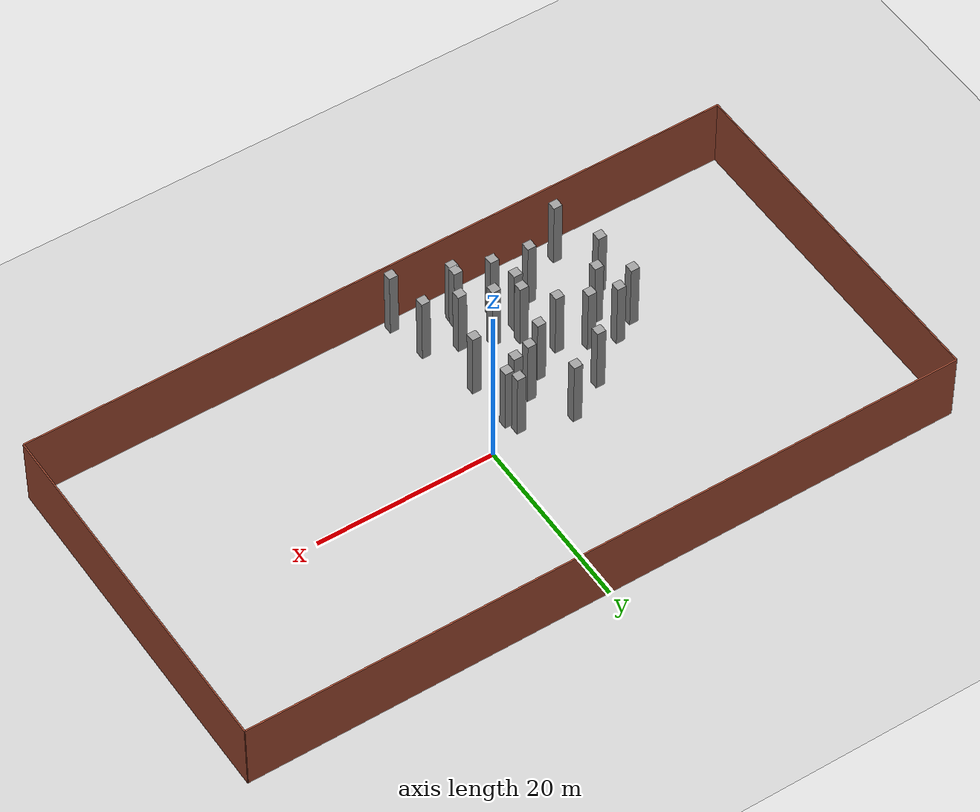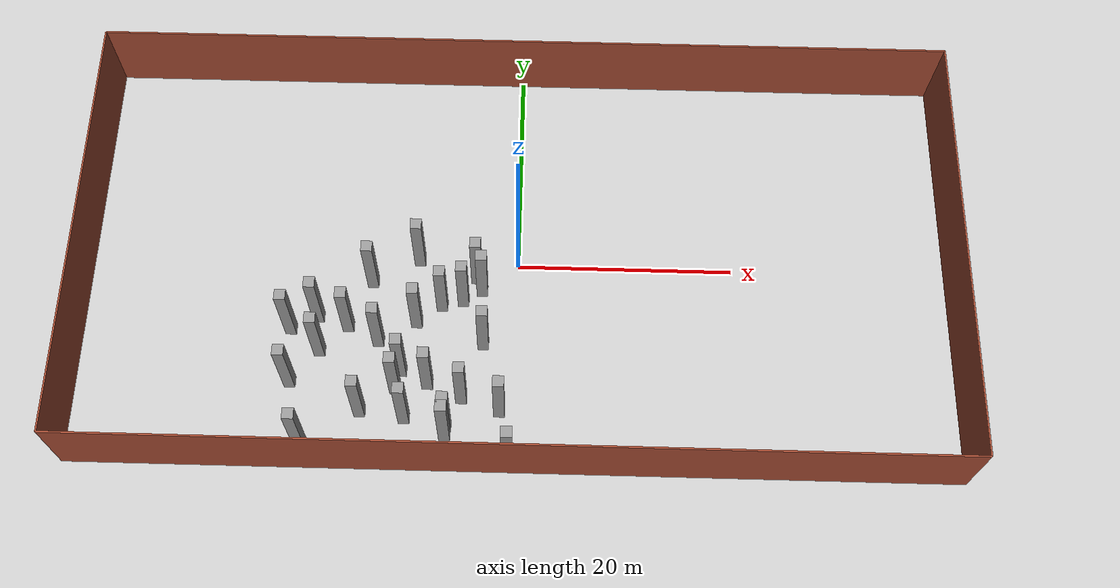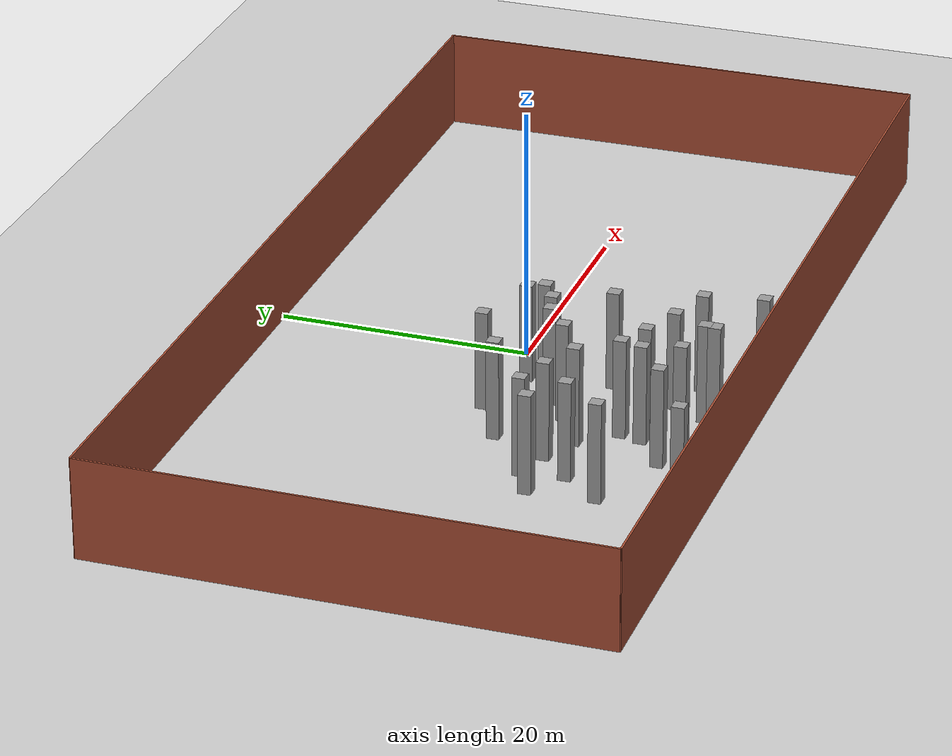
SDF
<sdf version="1.7">
 <world name="default">
  <model name="ground_plane">
   <static>1</static>
   <link name="link">
    <collision name="collision">
     <geometry><plane><normal>0 0 1</normal><size>100 100</size></plane></geometry>
     <surface>
      <contact><collide_bitmask>65535</collide_bitmask></contact>
      <friction><ode><mu>100</mu><mu2>50</mu2></ode></friction>
     </surface>
    </collision>
    <visual name="visual">
     <cast_shadows>0</cast_shadows>
     <geometry><plane><normal>0 0 1</normal><size>100 100</size></plane></geometry>
     <material>
      <script><uri>file://media/materials/scripts/gazebo.material</uri><name>Gazebo/Grey</name></script>
     </material>
    </visual>
   </link>
  </model>
  <model name="sim_room_rect">
   <link name="Wall_14">
    <collision name="Wall_14_Collision">
     <geometry><box><size>40 0.15 8</size></box></geometry>
     <pose>0 0 4 0 -0 0</pose>
    </collision>
    <visual name="Wall_14_Visual">
     <pose>0 0 4 0 -0 0</pose>
     <geometry><box><size>40 0.15 8</size></box></geometry>
     <material>
      <script><uri>file://media/materials/scripts/gazebo.material</uri><name>Gazebo/Bricks</name></script>
      <ambient>1 1 1 1</ambient>
     </material>
     <meta><layer>0</layer></meta>
    </visual>
    <pose>40 -0 0 0 -0 -1.5708</pose>
   </link>
   <link name="Wall_15">
    <collision name="Wall_15_Collision">
     <geometry><box><size>80 0.15 8</size></box></geometry>
     <pose>0 0 4 0 -0 0</pose>
    </collision>
    <visual name="Wall_15_Visual">
     <pose>0 0 4 0 -0 0</pose>
     <geometry><box><size>80 0.15 8</size></box></geometry>
     <material>
      <script><uri>file://media/materials/scripts/gazebo.material</uri><name>Gazebo/Bricks</name></script>
      <ambient>1 1 1 1</ambient>
     </material>
     <meta><layer>0</layer></meta>
    </visual>
    <pose>0 -20 0 0 -0 3.14159</pose>
   </link>
   <link name="Wall_16">
    <collision name="Wall_16_Collision">
     <geometry><box><size>40 0.15 8</size></box></geometry>
     <pose>0 0 4 0 -0 0</pose>
    </collision>
    <visual name="Wall_16_Visual">
     <pose>0 0 4 0 -0 0</pose>
     <geometry><box><size>40 0.15 8</size></box></geometry>
     <material>
      <script><uri>file://media/materials/scripts/gazebo.material</uri><name>Gazebo/Bricks</name></script>
      <ambient>1 1 1 1</ambient>
     </material>
     <meta><layer>0</layer></meta>
    </visual>
    <pose>-40 -0 0 0 -0 1.5708</pose>
   </link>
   <link name="Wall_19">
    <collision name="Wall_19_Collision">
     <geometry><box><size>80 0.15 8</size></box></geometry>
     <pose>0 0 4 0 -0 0</pose>
    </collision>
    <visual name="Wall_19_Visual">
     <pose>0 0 4 0 -0 0</pose>
     <geometry><box><size>80 0.15 8</size></box></geometry>
     <material>
      <script><uri>file://media/materials/scripts/gazebo.material</uri><name>Gazebo/Bricks</name></script>
      <ambient>1 1 1 1</ambient>
     </material>
     <meta><layer>0</layer></meta>
    </visual>
    <pose>0 20 0 0 -0 0</pose>
   </link>
   <static>1</static>
  </model>
  <model name="unit_box_static2">
   <link name="link">
    <inertial>
     <mass>1</mass>
     <inertia>
      <ixx>0.166667</ixx>
      <ixy>0</ixy>
      <ixz>0</ixz>
      <iyy>0.166667</iyy>
      <iyz>0</iyz>
      <izz>0.166667</izz>
     </inertia>
    </inertial>
    <visual name="visual">
     <geometry><box><size>1 1 8</size></box></geometry>
     <material>
      <script><name>Gazebo/Grey</name><uri>file://media/materials/scripts/gazebo.material</uri></script>
      <shader type="pixel"/>
     </material>
    </visual>
    <collision name="collision">
     <geometry><box><size>1 1 8</size></box></geometry>
     <surface>
      <friction>
       <ode><mu>1</mu><mu2>1</mu2><fdir1>0 0 0</fdir1><slip1>0</slip1><slip2>0</slip2></ode>
       <torsional>
        <coefficient>1</coefficient>
        <patch_radius>0</patch_radius>
        <surface_radius>0</surface_radius>
        <use_patch_radius>1</use_patch_radius>
        <ode><slip>0</slip></ode>
       </torsional>
      </friction>
      <bounce><restitution_coefficient>0</restitution_coefficient><threshold>1e+06</threshold></bounce>
      <contact>
       <collide_without_contact>0</collide_without_contact>
       <collide_without_contact_bitmask>1</collide_without_contact_bitmask>
       <collide_bitmask>1</collide_bitmask>
       <ode>
        <soft_cfm>0</soft_cfm>
        <soft_erp>0.2</soft_erp>
        <kp>1e+13</kp>
        <kd>1</kd>
        <max_vel>0.01</max_vel>
        <min_depth>0</min_depth>
       </ode>
       <bullet>
        <split_impulse>1</split_impulse>
        <split_impulse_penetration_threshold>-0.01</split_impulse_penetration_threshold>
        <soft_cfm>0</soft_cfm>
        <soft_erp>0.2</soft_erp>
        <kp>1e+13</kp>
        <kd>1</kd>
       </bullet>
      </contact>
     </surface>
    </collision>
   </link>
   <static>1</static>
   <pose>-9.19564 -5.97287 4 0 -0 0</pose>
  </model>
  <model name="unit_box_static8">
   <link name="link">
    <inertial>
     <mass>1</mass>
     <inertia>
      <ixx>0.166667</ixx>
      <ixy>0</ixy>
      <ixz>0</ixz>
      <iyy>0.166667</iyy>
      <iyz>0</iyz>
      <izz>0.166667</izz>
     </inertia>
    </inertial>
    <visual name="visual">
     <geometry><box><size>1 1 8</size></box></geometry>
     <material>
      <script><name>Gazebo/Grey</name><uri>file://media/materials/scripts/gazebo.material</uri></script>
      <shader type="pixel"/>
     </material>
    </visual>
    <collision name="collision">
     <geometry><box><size>1 1 8</size></box></geometry>
     <surface>
      <friction>
       <ode><mu>1</mu><mu2>1</mu2><fdir1>0 0 0</fdir1><slip1>0</slip1><slip2>0</slip2></ode>
       <torsional>
        <coefficient>1</coefficient>
        <patch_radius>0</patch_radius>
        <surface_radius>0</surface_radius>
        <use_patch_radius>1</use_patch_radius>
        <ode><slip>0</slip></ode>
       </torsional>
      </friction>
      <bounce><restitution_coefficient>0</restitution_coefficient><threshold>1e+06</threshold></bounce>
      <contact>
       <collide_without_contact>0</collide_without_contact>
       <collide_without_contact_bitmask>1</collide_without_contact_bitmask>
       <collide_bitmask>1</collide_bitmask>
       <ode>
        <soft_cfm>0</soft_cfm>
        <soft_erp>0.2</soft_erp>
        <kp>1e+13</kp>
        <kd>1</kd>
        <max_vel>0.01</max_vel>
        <min_depth>0</min_depth>
       </ode>
       <bullet>
        <split_impulse>1</split_impulse>
        <split_impulse_penetration_threshold>-0.01</split_impulse_penetration_threshold>
        <soft_cfm>0</soft_cfm>
        <soft_erp>0.2</soft_erp>
        <kp>1e+13</kp>
        <kd>1</kd>
       </bullet>
      </contact>
     </surface>
    </collision>
   </link>
   <static>1</static>
   <pose>-6.16875 -16.7566 4 0 -0 0</pose>
  </model>
  <model name="unit_box_static10">
   <link name="link">
    <inertial>
     <mass>1</mass>
     <inertia>
      <ixx>0.166667</ixx>
      <ixy>0</ixy>
      <ixz>0</ixz>
      <iyy>0.166667</iyy>
      <iyz>0</iyz>
      <izz>0.166667</izz>
     </inertia>
    </inertial>
    <visual name="visual">
     <geometry><box><size>1 1 8</size></box></geometry>
     <material>
      <script><name>Gazebo/Grey</name><uri>file://media/materials/scripts/gazebo.material</uri></script>
      <shader type="pixel"/>
     </material>
    </visual>
    <collision name="collision">
     <geometry><box><size>1 1 8</size></box></geometry>
     <surface>
      <friction>
       <ode><mu>1</mu><mu2>1</mu2><fdir1>0 0 0</fdir1><slip1>0</slip1><slip2>0</slip2></ode>
       <torsional>
        <coefficient>1</coefficient>
        <patch_radius>0</patch_radius>
        <surface_radius>0</surface_radius>
        <use_patch_radius>1</use_patch_radius>
        <ode><slip>0</slip></ode>
       </torsional>
      </friction>
      <bounce><restitution_coefficient>0</restitution_coefficient><threshold>1e+06</threshold></bounce>
      <contact>
       <collide_without_contact>0</collide_without_contact>
       <collide_without_contact_bitmask>1</collide_without_contact_bitmask>
       <collide_bitmask>1</collide_bitmask>
       <ode>
        <soft_cfm>0</soft_cfm>
        <soft_erp>0.2</soft_erp>
        <kp>1e+13</kp>
        <kd>1</kd>
        <max_vel>0.01</max_vel>
        <min_depth>0</min_depth>
       </ode>
       <bullet>
        <split_impulse>1</split_impulse>
        <split_impulse_penetration_threshold>-0.01</split_impulse_penetration_threshold>
        <soft_cfm>0</soft_cfm>
        <soft_erp>0.2</soft_erp>
        <kp>1e+13</kp>
        <kd>1</kd>
       </bullet>
      </contact>
     </surface>
    </collision>
   </link>
   <static>1</static>
   <pose>-18.3056 -5.62898 4 0 -0 0</pose>
  </model>
  <model name="unit_box_static21">
   <link name="link">
    <inertial>
     <mass>1</mass>
     <inertia>
      <ixx>0.166667</ixx>
      <ixy>0</ixy>
      <ixz>0</ixz>
      <iyy>0.166667</iyy>
      <iyz>0</iyz>
      <izz>0.166667</izz>
     </inertia>
    </inertial>
    <visual name="visual">
     <geometry><box><size>1 1 8</size></box></geometry>
     <material>
      <script><name>Gazebo/Grey</name><uri>file://media/materials/scripts/gazebo.material</uri></script>
      <shader type="pixel"/>
     </material>
    </visual>
    <collision name="collision">
     <geometry><box><size>1 1 8</size></box></geometry>
     <surface>
      <friction>
       <ode><mu>1</mu><mu2>1</mu2><fdir1>0 0 0</fdir1><slip1>0</slip1><slip2>0</slip2></ode>
       <torsional>
        <coefficient>1</coefficient>
        <patch_radius>0</patch_radius>
        <surface_radius>0</surface_radius>
        <use_patch_radius>1</use_patch_radius>
        <ode><slip>0</slip></ode>
       </torsional>
      </friction>
      <bounce><restitution_coefficient>0</restitution_coefficient><threshold>1e+06</threshold></bounce>
      <contact>
       <collide_without_contact>0</collide_without_contact>
       <collide_without_contact_bitmask>1</collide_without_contact_bitmask>
       <collide_bitmask>1</collide_bitmask>
       <ode>
        <soft_cfm>0</soft_cfm>
        <soft_erp>0.2</soft_erp>
        <kp>1e+13</kp>
        <kd>1</kd>
        <max_vel>0.01</max_vel>
        <min_depth>0</min_depth>
       </ode>
       <bullet>
        <split_impulse>1</split_impulse>
        <split_impulse_penetration_threshold>-0.01</split_impulse_penetration_threshold>
        <soft_cfm>0</soft_cfm>
        <soft_erp>0.2</soft_erp>
        <kp>1e+13</kp>
        <kd>1</kd>
       </bullet>
      </contact>
     </surface>
    </collision>
   </link>
   <static>1</static>
   <pose>-9.87841 -15.2648 4 0 -0 0</pose>
  </model>
  <model name="unit_box_static29">
   <link name="link">
    <inertial>
     <mass>1</mass>
     <inertia>
      <ixx>0.166667</ixx>
      <ixy>0</ixy>
      <ixz>0</ixz>
      <iyy>0.166667</iyy>
      <iyz>0</iyz>
      <izz>0.166667</izz>
     </inertia>
    </inertial>
    <visual name="visual">
     <geometry><box><size>1 1 8</size></box></geometry>
     <material>
      <script><name>Gazebo/Grey</name><uri>file://media/materials/scripts/gazebo.material</uri></script>
      <shader type="pixel"/>
     </material>
    </visual>
    <collision name="collision">
     <geometry><box><size>1 1 8</size></box></geometry>
     <surface>
      <friction>
       <ode><mu>1</mu><mu2>1</mu2><fdir1>0 0 0</fdir1><slip1>0</slip1><slip2>0</slip2></ode>
       <torsional>
        <coefficient>1</coefficient>
        <patch_radius>0</patch_radius>
        <surface_radius>0</surface_radius>
        <use_patch_radius>1</use_patch_radius>
        <ode><slip>0</slip></ode>
       </torsional>
      </friction>
      <bounce><restitution_coefficient>0</restitution_coefficient><threshold>1e+06</threshold></bounce>
      <contact>
       <collide_without_contact>0</collide_without_contact>
       <collide_without_contact_bitmask>1</collide_without_contact_bitmask>
       <collide_bitmask>1</collide_bitmask>
       <ode>
        <soft_cfm>0</soft_cfm>
        <soft_erp>0.2</soft_erp>
        <kp>1e+13</kp>
        <kd>1</kd>
        <max_vel>0.01</max_vel>
        <min_depth>0</min_depth>
       </ode>
       <bullet>
        <split_impulse>1</split_impulse>
        <split_impulse_penetration_threshold>-0.01</split_impulse_penetration_threshold>
        <soft_cfm>0</soft_cfm>
        <soft_erp>0.2</soft_erp>
        <kp>1e+13</kp>
        <kd>1</kd>
       </bullet>
      </contact>
     </surface>
    </collision>
   </link>
   <static>1</static>
   <pose>-6.92223 -4.2408 4 0 -0 0</pose>
  </model>
  <model name="unit_box_static36">
   <link name="link">
    <inertial>
     <mass>1</mass>
     <inertia>
      <ixx>0.166667</ixx>
      <ixy>0</ixy>
      <ixz>0</ixz>
      <iyy>0.166667</iyy>
      <iyz>0</iyz>
      <izz>0.166667</izz>
     </inertia>
    </inertial>
    <visual name="visual">
     <geometry><box><size>1 1 8</size></box></geometry>
     <material>
      <script><name>Gazebo/Grey</name><uri>file://media/materials/scripts/gazebo.material</uri></script>
      <shader type="pixel"/>
     </material>
    </visual>
    <collision name="collision">
     <geometry><box><size>1 1 8</size></box></geometry>
     <surface>
      <friction>
       <ode><mu>1</mu><mu2>1</mu2><fdir1>0 0 0</fdir1><slip1>0</slip1><slip2>0</slip2></ode>
       <torsional>
        <coefficient>1</coefficient>
        <patch_radius>0</patch_radius>
        <surface_radius>0</surface_radius>
        <use_patch_radius>1</use_patch_radius>
        <ode><slip>0</slip></ode>
       </torsional>
      </friction>
      <bounce><restitution_coefficient>0</restitution_coefficient><threshold>1e+06</threshold></bounce>
      <contact>
       <collide_without_contact>0</collide_without_contact>
       <collide_without_contact_bitmask>1</collide_without_contact_bitmask>
       <collide_bitmask>1</collide_bitmask>
       <ode>
        <soft_cfm>0</soft_cfm>
        <soft_erp>0.2</soft_erp>
        <kp>1e+13</kp>
        <kd>1</kd>
        <max_vel>0.01</max_vel>
        <min_depth>0</min_depth>
       </ode>
       <bullet>
        <split_impulse>1</split_impulse>
        <split_impulse_penetration_threshold>-0.01</split_impulse_penetration_threshold>
        <soft_cfm>0</soft_cfm>
        <soft_erp>0.2</soft_erp>
        <kp>1e+13</kp>
        <kd>1</kd>
       </bullet>
      </contact>
     </surface>
    </collision>
   </link>
   <static>1</static>
   <pose>-10.3728 -10.791 4 0 -0 0</pose>
  </model>
  <model name="unit_box_static37">
   <link name="link">
    <inertial>
     <mass>1</mass>
     <inertia>
      <ixx>0.166667</ixx>
      <ixy>0</ixy>
      <ixz>0</ixz>
      <iyy>0.166667</iyy>
      <iyz>0</iyz>
      <izz>0.166667</izz>
     </inertia>
    </inertial>
    <visual name="visual">
     <geometry><box><size>1 1 8</size></box></geometry>
     <material>
      <script><name>Gazebo/Grey</name><uri>file://media/materials/scripts/gazebo.material</uri></script>
      <shader type="pixel"/>
     </material>
    </visual>
    <collision name="collision">
     <geometry><box><size>1 1 8</size></box></geometry>
     <surface>
      <friction>
       <ode><mu>1</mu><mu2>1</mu2><fdir1>0 0 0</fdir1><slip1>0</slip1><slip2>0</slip2></ode>
       <torsional>
        <coefficient>1</coefficient>
        <patch_radius>0</patch_radius>
        <surface_radius>0</surface_radius>
        <use_patch_radius>1</use_patch_radius>
        <ode><slip>0</slip></ode>
       </torsional>
      </friction>
      <bounce><restitution_coefficient>0</restitution_coefficient><threshold>1e+06</threshold></bounce>
      <contact>
       <collide_without_contact>0</collide_without_contact>
       <collide_without_contact_bitmask>1</collide_without_contact_bitmask>
       <collide_bitmask>1</collide_bitmask>
       <ode>
        <soft_cfm>0</soft_cfm>
        <soft_erp>0.2</soft_erp>
        <kp>1e+13</kp>
        <kd>1</kd>
        <max_vel>0.01</max_vel>
        <min_depth>0</min_depth>
       </ode>
       <bullet>
        <split_impulse>1</split_impulse>
        <split_impulse_penetration_threshold>-0.01</split_impulse_penetration_threshold>
        <soft_cfm>0</soft_cfm>
        <soft_erp>0.2</soft_erp>
        <kp>1e+13</kp>
        <kd>1</kd>
       </bullet>
      </contact>
     </surface>
    </collision>
   </link>
   <static>1</static>
   <pose>-15.4811 -6.53419 4 0 -0 0</pose>
  </model>
  <model name="unit_box_static47">
   <link name="link">
    <inertial>
     <mass>1</mass>
     <inertia>
      <ixx>0.166667</ixx>
      <ixy>0</ixy>
      <ixz>0</ixz>
      <iyy>0.166667</iyy>
      <iyz>0</iyz>
      <izz>0.166667</izz>
     </inertia>
    </inertial>
    <visual name="visual">
     <geometry><box><size>1 1 8</size></box></geometry>
     <material>
      <script><name>Gazebo/Grey</name><uri>file://media/materials/scripts/gazebo.material</uri></script>
      <shader type="pixel"/>
     </material>
    </visual>
    <collision name="collision">
     <geometry><box><size>1 1 8</size></box></geometry>
     <surface>
      <friction>
       <ode><mu>1</mu><mu2>1</mu2><fdir1>0 0 0</fdir1><slip1>0</slip1><slip2>0</slip2></ode>
       <torsional>
        <coefficient>1</coefficient>
        <patch_radius>0</patch_radius>
        <surface_radius>0</surface_radius>
        <use_patch_radius>1</use_patch_radius>
        <ode><slip>0</slip></ode>
       </torsional>
      </friction>
      <bounce><restitution_coefficient>0</restitution_coefficient><threshold>1e+06</threshold></bounce>
      <contact>
       <collide_without_contact>0</collide_without_contact>
       <collide_without_contact_bitmask>1</collide_without_contact_bitmask>
       <collide_bitmask>1</collide_bitmask>
       <ode>
        <soft_cfm>0</soft_cfm>
        <soft_erp>0.2</soft_erp>
        <kp>1e+13</kp>
        <kd>1</kd>
        <max_vel>0.01</max_vel>
        <min_depth>0</min_depth>
       </ode>
       <bullet>
        <split_impulse>1</split_impulse>
        <split_impulse_penetration_threshold>-0.01</split_impulse_penetration_threshold>
        <soft_cfm>0</soft_cfm>
        <soft_erp>0.2</soft_erp>
        <kp>1e+13</kp>
        <kd>1</kd>
       </bullet>
      </contact>
     </surface>
    </collision>
   </link>
   <static>1</static>
   <pose>-13.4841 -1.99554 4 0 -0 0</pose>
  </model>
  <model name="unit_box_static49">
   <link name="link">
    <inertial>
     <mass>1</mass>
     <inertia>
      <ixx>0.166667</ixx>
      <ixy>0</ixy>
      <ixz>0</ixz>
      <iyy>0.166667</iyy>
      <iyz>0</iyz>
      <izz>0.166667</izz>
     </inertia>
    </inertial>
    <visual name="visual">
     <geometry><box><size>1 1 8</size></box></geometry>
     <material>
      <script><name>Gazebo/Grey</name><uri>file://media/materials/scripts/gazebo.material</uri></script>
      <shader type="pixel"/>
     </material>
    </visual>
    <collision name="collision">
     <geometry><box><size>1 1 8</size></box></geometry>
     <surface>
      <friction>
       <ode><mu>1</mu><mu2>1</mu2><fdir1>0 0 0</fdir1><slip1>0</slip1><slip2>0</slip2></ode>
       <torsional>
        <coefficient>1</coefficient>
        <patch_radius>0</patch_radius>
        <surface_radius>0</surface_radius>
        <use_patch_radius>1</use_patch_radius>
        <ode><slip>0</slip></ode>
       </torsional>
      </friction>
      <bounce><restitution_coefficient>0</restitution_coefficient><threshold>1e+06</threshold></bounce>
      <contact>
       <collide_without_contact>0</collide_without_contact>
       <collide_without_contact_bitmask>1</collide_without_contact_bitmask>
       <collide_bitmask>1</collide_bitmask>
       <ode>
        <soft_cfm>0</soft_cfm>
        <soft_erp>0.2</soft_erp>
        <kp>1e+13</kp>
        <kd>1</kd>
        <max_vel>0.01</max_vel>
        <min_depth>0</min_depth>
       </ode>
       <bullet>
        <split_impulse>1</split_impulse>
        <split_impulse_penetration_threshold>-0.01</split_impulse_penetration_threshold>
        <soft_cfm>0</soft_cfm>
        <soft_erp>0.2</soft_erp>
        <kp>1e+13</kp>
        <kd>1</kd>
       </bullet>
      </contact>
     </surface>
    </collision>
   </link>
   <static>1</static>
   <pose>-3.0047 -7.96691 4 0 -0 0</pose>
  </model>
  <model name="unit_box_static56">
   <link name="link">
    <inertial>
     <mass>1</mass>
     <inertia>
      <ixx>0.166667</ixx>
      <ixy>0</ixy>
      <ixz>0</ixz>
      <iyy>0.166667</iyy>
      <iyz>0</iyz>
      <izz>0.166667</izz>
     </inertia>
    </inertial>
    <visual name="visual">
     <geometry><box><size>1 1 8</size></box></geometry>
     <material>
      <script><name>Gazebo/Grey</name><uri>file://media/materials/scripts/gazebo.material</uri></script>
      <shader type="pixel"/>
     </material>
    </visual>
    <collision name="collision">
     <geometry><box><size>1 1 8</size></box></geometry>
     <surface>
      <friction>
       <ode><mu>1</mu><mu2>1</mu2><fdir1>0 0 0</fdir1><slip1>0</slip1><slip2>0</slip2></ode>
       <torsional>
        <coefficient>1</coefficient>
        <patch_radius>0</patch_radius>
        <surface_radius>0</surface_radius>
        <use_patch_radius>1</use_patch_radius>
        <ode><slip>0</slip></ode>
       </torsional>
      </friction>
      <bounce><restitution_coefficient>0</restitution_coefficient><threshold>1e+06</threshold></bounce>
      <contact>
       <collide_without_contact>0</collide_without_contact>
       <collide_without_contact_bitmask>1</collide_without_contact_bitmask>
       <collide_bitmask>1</collide_bitmask>
       <ode>
        <soft_cfm>0</soft_cfm>
        <soft_erp>0.2</soft_erp>
        <kp>1e+13</kp>
        <kd>1</kd>
        <max_vel>0.01</max_vel>
        <min_depth>0</min_depth>
       </ode>
       <bullet>
        <split_impulse>1</split_impulse>
        <split_impulse_penetration_threshold>-0.01</split_impulse_penetration_threshold>
        <soft_cfm>0</soft_cfm>
        <soft_erp>0.2</soft_erp>
        <kp>1e+13</kp>
        <kd>1</kd>
       </bullet>
      </contact>
     </surface>
    </collision>
   </link>
   <static>1</static>
   <pose>-10.8013 -12.5136 4 0 -0 0</pose>
  </model>
  <model name="unit_box_static65">
   <link name="link">
    <inertial>
     <mass>1</mass>
     <inertia>
      <ixx>0.166667</ixx>
      <ixy>0</ixy>
      <ixz>0</ixz>
      <iyy>0.166667</iyy>
      <iyz>0</iyz>
      <izz>0.166667</izz>
     </inertia>
    </inertial>
    <visual name="visual">
     <geometry><box><size>1 1 8</size></box></geometry>
     <material>
      <script><name>Gazebo/Grey</name><uri>file://media/materials/scripts/gazebo.material</uri></script>
      <shader type="pixel"/>
     </material>
    </visual>
    <collision name="collision">
     <geometry><box><size>1 1 8</size></box></geometry>
     <surface>
      <friction>
       <ode><mu>1</mu><mu2>1</mu2><fdir1>0 0 0</fdir1><slip1>0</slip1><slip2>0</slip2></ode>
       <torsional>
        <coefficient>1</coefficient>
        <patch_radius>0</patch_radius>
        <surface_radius>0</surface_radius>
        <use_patch_radius>1</use_patch_radius>
        <ode><slip>0</slip></ode>
       </torsional>
      </friction>
      <bounce><restitution_coefficient>0</restitution_coefficient><threshold>1e+06</threshold></bounce>
      <contact>
       <collide_without_contact>0</collide_without_contact>
       <collide_without_contact_bitmask>1</collide_without_contact_bitmask>
       <collide_bitmask>1</collide_bitmask>
       <ode>
        <soft_cfm>0</soft_cfm>
        <soft_erp>0.2</soft_erp>
        <kp>1e+13</kp>
        <kd>1</kd>
        <max_vel>0.01</max_vel>
        <min_depth>0</min_depth>
       </ode>
       <bullet>
        <split_impulse>1</split_impulse>
        <split_impulse_penetration_threshold>-0.01</split_impulse_penetration_threshold>
        <soft_cfm>0</soft_cfm>
        <soft_erp>0.2</soft_erp>
        <kp>1e+13</kp>
        <kd>1</kd>
       </bullet>
      </contact>
     </surface>
    </collision>
   </link>
   <static>1</static>
   <pose>-20.7592 -6.89951 4 0 -0 0</pose>
  </model>
  <model name="unit_box_static70">
   <link name="link">
    <inertial>
     <mass>1</mass>
     <inertia>
      <ixx>0.166667</ixx>
      <ixy>0</ixy>
      <ixz>0</ixz>
      <iyy>0.166667</iyy>
      <iyz>0</iyz>
      <izz>0.166667</izz>
     </inertia>
    </inertial>
    <visual name="visual">
     <geometry><box><size>1 1 8</size></box></geometry>
     <material>
      <script><name>Gazebo/Grey</name><uri>file://media/materials/scripts/gazebo.material</uri></script>
      <shader type="pixel"/>
     </material>
    </visual>
    <collision name="collision">
     <geometry><box><size>1 1 8</size></box></geometry>
     <surface>
      <friction>
       <ode><mu>1</mu><mu2>1</mu2><fdir1>0 0 0</fdir1><slip1>0</slip1><slip2>0</slip2></ode>
       <torsional>
        <coefficient>1</coefficient>
        <patch_radius>0</patch_radius>
        <surface_radius>0</surface_radius>
        <use_patch_radius>1</use_patch_radius>
        <ode><slip>0</slip></ode>
       </torsional>
      </friction>
      <bounce><restitution_coefficient>0</restitution_coefficient><threshold>1e+06</threshold></bounce>
      <contact>
       <collide_without_contact>0</collide_without_contact>
       <collide_without_contact_bitmask>1</collide_without_contact_bitmask>
       <collide_bitmask>1</collide_bitmask>
       <ode>
        <soft_cfm>0</soft_cfm>
        <soft_erp>0.2</soft_erp>
        <kp>1e+13</kp>
        <kd>1</kd>
        <max_vel>0.01</max_vel>
        <min_depth>0</min_depth>
       </ode>
       <bullet>
        <split_impulse>1</split_impulse>
        <split_impulse_penetration_threshold>-0.01</split_impulse_penetration_threshold>
        <soft_cfm>0</soft_cfm>
        <soft_erp>0.2</soft_erp>
        <kp>1e+13</kp>
        <kd>1</kd>
       </bullet>
      </contact>
     </surface>
    </collision>
   </link>
   <static>1</static>
   <pose>-6.10529 -15.982 4 0 -0 0</pose>
  </model>
  <model name="unit_box_static82">
   <link name="link">
    <inertial>
     <mass>1</mass>
     <inertia>
      <ixx>0.166667</ixx>
      <ixy>0</ixy>
      <ixz>0</ixz>
      <iyy>0.166667</iyy>
      <iyz>0</iyz>
      <izz>0.166667</izz>
     </inertia>
    </inertial>
    <visual name="visual">
     <geometry><box><size>1 1 8</size></box></geometry>
     <material>
      <script><name>Gazebo/Grey</name><uri>file://media/materials/scripts/gazebo.material</uri></script>
      <shader type="pixel"/>
     </material>
    </visual>
    <collision name="collision">
     <geometry><box><size>1 1 8</size></box></geometry>
     <surface>
      <friction>
       <ode><mu>1</mu><mu2>1</mu2><fdir1>0 0 0</fdir1><slip1>0</slip1><slip2>0</slip2></ode>
       <torsional>
        <coefficient>1</coefficient>
        <patch_radius>0</patch_radius>
        <surface_radius>0</surface_radius>
        <use_patch_radius>1</use_patch_radius>
        <ode><slip>0</slip></ode>
       </torsional>
      </friction>
      <bounce><restitution_coefficient>0</restitution_coefficient><threshold>1e+06</threshold></bounce>
      <contact>
       <collide_without_contact>0</collide_without_contact>
       <collide_without_contact_bitmask>1</collide_without_contact_bitmask>
       <collide_bitmask>1</collide_bitmask>
       <ode>
        <soft_cfm>0</soft_cfm>
        <soft_erp>0.2</soft_erp>
        <kp>1e+13</kp>
        <kd>1</kd>
        <max_vel>0.01</max_vel>
        <min_depth>0</min_depth>
       </ode>
       <bullet>
        <split_impulse>1</split_impulse>
        <split_impulse_penetration_threshold>-0.01</split_impulse_penetration_threshold>
        <soft_cfm>0</soft_cfm>
        <soft_erp>0.2</soft_erp>
        <kp>1e+13</kp>
        <kd>1</kd>
       </bullet>
      </contact>
     </surface>
    </collision>
   </link>
   <static>1</static>
   <pose>-9.21757 0.33254 4 0 -0 0</pose>
  </model>
  <model name="unit_box_static99">
   <link name="link">
    <inertial>
     <mass>1</mass>
     <inertia>
      <ixx>0.166667</ixx>
      <ixy>0</ixy>
      <ixz>0</ixz>
      <iyy>0.166667</iyy>
      <iyz>0</iyz>
      <izz>0.166667</izz>
     </inertia>
    </inertial>
    <visual name="visual">
     <geometry><box><size>1 1 8</size></box></geometry>
     <material>
      <script><name>Gazebo/Grey</name><uri>file://media/materials/scripts/gazebo.material</uri></script>
      <shader type="pixel"/>
     </material>
    </visual>
    <collision name="collision">
     <geometry><box><size>1 1 8</size></box></geometry>
     <surface>
      <friction>
       <ode><mu>1</mu><mu2>1</mu2><fdir1>0 0 0</fdir1><slip1>0</slip1><slip2>0</slip2></ode>
       <torsional>
        <coefficient>1</coefficient>
        <patch_radius>0</patch_radius>
        <surface_radius>0</surface_radius>
        <use_patch_radius>1</use_patch_radius>
        <ode><slip>0</slip></ode>
       </torsional>
      </friction>
      <bounce><restitution_coefficient>0</restitution_coefficient><threshold>1e+06</threshold></bounce>
      <contact>
       <collide_without_contact>0</collide_without_contact>
       <collide_without_contact_bitmask>1</collide_without_contact_bitmask>
       <collide_bitmask>1</collide_bitmask>
       <ode>
        <soft_cfm>0</soft_cfm>
        <soft_erp>0.2</soft_erp>
        <kp>1e+13</kp>
        <kd>1</kd>
        <max_vel>0.01</max_vel>
        <min_depth>0</min_depth>
       </ode>
       <bullet>
        <split_impulse>1</split_impulse>
        <split_impulse_penetration_threshold>-0.01</split_impulse_penetration_threshold>
        <soft_cfm>0</soft_cfm>
        <soft_erp>0.2</soft_erp>
        <kp>1e+13</kp>
        <kd>1</kd>
       </bullet>
      </contact>
     </surface>
    </collision>
   </link>
   <static>1</static>
   <pose>-0.508644 -18.9445 4 0 -0 0</pose>
  </model>
  <model name="unit_box_static115">
   <link name="link">
    <inertial>
     <mass>1</mass>
     <inertia>
      <ixx>0.166667</ixx>
      <ixy>0</ixy>
      <ixz>0</ixz>
      <iyy>0.166667</iyy>
      <iyz>0</iyz>
      <izz>0.166667</izz>
     </inertia>
    </inertial>
    <visual name="visual">
     <geometry><box><size>1 1 8</size></box></geometry>
     <material>
      <script><name>Gazebo/Grey</name><uri>file://media/materials/scripts/gazebo.material</uri></script>
      <shader type="pixel"/>
     </material>
    </visual>
    <collision name="collision">
     <geometry><box><size>1 1 8</size></box></geometry>
     <surface>
      <friction>
       <ode><mu>1</mu><mu2>1</mu2><fdir1>0 0 0</fdir1><slip1>0</slip1><slip2>0</slip2></ode>
       <torsional>
        <coefficient>1</coefficient>
        <patch_radius>0</patch_radius>
        <surface_radius>0</surface_radius>
        <use_patch_radius>1</use_patch_radius>
        <ode><slip>0</slip></ode>
       </torsional>
      </friction>
      <bounce><restitution_coefficient>0</restitution_coefficient><threshold>1e+06</threshold></bounce>
      <contact>
       <collide_without_contact>0</collide_without_contact>
       <collide_without_contact_bitmask>1</collide_without_contact_bitmask>
       <collide_bitmask>1</collide_bitmask>
       <ode>
        <soft_cfm>0</soft_cfm>
        <soft_erp>0.2</soft_erp>
        <kp>1e+13</kp>
        <kd>1</kd>
        <max_vel>0.01</max_vel>
        <min_depth>0</min_depth>
       </ode>
       <bullet>
        <split_impulse>1</split_impulse>
        <split_impulse_penetration_threshold>-0.01</split_impulse_penetration_threshold>
        <soft_cfm>0</soft_cfm>
        <soft_erp>0.2</soft_erp>
        <kp>1e+13</kp>
        <kd>1</kd>
       </bullet>
      </contact>
     </surface>
    </collision>
   </link>
   <static>1</static>
   <pose>-4.98115 -3.71603 4 0 -0 0</pose>
  </model>
  <model name="unit_box_static118">
   <link name="link">
    <inertial>
     <mass>1</mass>
     <inertia>
      <ixx>0.166667</ixx>
      <ixy>0</ixy>
      <ixz>0</ixz>
      <iyy>0.166667</iyy>
      <iyz>0</iyz>
      <izz>0.166667</izz>
     </inertia>
    </inertial>
    <visual name="visual">
     <geometry><box><size>1 1 8</size></box></geometry>
     <material>
      <script><name>Gazebo/Grey</name><uri>file://media/materials/scripts/gazebo.material</uri></script>
      <shader type="pixel"/>
     </material>
    </visual>
    <collision name="collision">
     <geometry><box><size>1 1 8</size></box></geometry>
     <surface>
      <friction>
       <ode><mu>1</mu><mu2>1</mu2><fdir1>0 0 0</fdir1><slip1>0</slip1><slip2>0</slip2></ode>
       <torsional>
        <coefficient>1</coefficient>
        <patch_radius>0</patch_radius>
        <surface_radius>0</surface_radius>
        <use_patch_radius>1</use_patch_radius>
        <ode><slip>0</slip></ode>
       </torsional>
      </friction>
      <bounce><restitution_coefficient>0</restitution_coefficient><threshold>1e+06</threshold></bounce>
      <contact>
       <collide_without_contact>0</collide_without_contact>
       <collide_without_contact_bitmask>1</collide_without_contact_bitmask>
       <collide_bitmask>1</collide_bitmask>
       <ode>
        <soft_cfm>0</soft_cfm>
        <soft_erp>0.2</soft_erp>
        <kp>1e+13</kp>
        <kd>1</kd>
        <max_vel>0.01</max_vel>
        <min_depth>0</min_depth>
       </ode>
       <bullet>
        <split_impulse>1</split_impulse>
        <split_impulse_penetration_threshold>-0.01</split_impulse_penetration_threshold>
        <soft_cfm>0</soft_cfm>
        <soft_erp>0.2</soft_erp>
        <kp>1e+13</kp>
        <kd>1</kd>
       </bullet>
      </contact>
     </surface>
    </collision>
   </link>
   <static>1</static>
   <pose>-13.8918 -14.7383 4 0 -0 0</pose>
  </model>
  <model name="unit_box_static124">
   <link name="link">
    <inertial>
     <mass>1</mass>
     <inertia>
      <ixx>0.166667</ixx>
      <ixy>0</ixy>
      <ixz>0</ixz>
      <iyy>0.166667</iyy>
      <iyz>0</iyz>
      <izz>0.166667</izz>
     </inertia>
    </inertial>
    <visual name="visual">
     <geometry><box><size>1 1 8</size></box></geometry>
     <material>
      <script><name>Gazebo/Grey</name><uri>file://media/materials/scripts/gazebo.material</uri></script>
      <shader type="pixel"/>
     </material>
    </visual>
    <collision name="collision">
     <geometry><box><size>1 1 8</size></box></geometry>
     <surface>
      <friction>
       <ode><mu>1</mu><mu2>1</mu2><fdir1>0 0 0</fdir1><slip1>0</slip1><slip2>0</slip2></ode>
       <torsional>
        <coefficient>1</coefficient>
        <patch_radius>0</patch_radius>
        <surface_radius>0</surface_radius>
        <use_patch_radius>1</use_patch_radius>
        <ode><slip>0</slip></ode>
       </torsional>
      </friction>
      <bounce><restitution_coefficient>0</restitution_coefficient><threshold>1e+06</threshold></bounce>
      <contact>
       <collide_without_contact>0</collide_without_contact>
       <collide_without_contact_bitmask>1</collide_without_contact_bitmask>
       <collide_bitmask>1</collide_bitmask>
       <ode>
        <soft_cfm>0</soft_cfm>
        <soft_erp>0.2</soft_erp>
        <kp>1e+13</kp>
        <kd>1</kd>
        <max_vel>0.01</max_vel>
        <min_depth>0</min_depth>
       </ode>
       <bullet>
        <split_impulse>1</split_impulse>
        <split_impulse_penetration_threshold>-0.01</split_impulse_penetration_threshold>
        <soft_cfm>0</soft_cfm>
        <soft_erp>0.2</soft_erp>
        <kp>1e+13</kp>
        <kd>1</kd>
       </bullet>
      </contact>
     </surface>
    </collision>
   </link>
   <static>1</static>
   <pose>-3.26794 -2.61889 4 0 -0 0</pose>
  </model>
  <model name="unit_box_static134">
   <link name="link">
    <inertial>
     <mass>1</mass>
     <inertia>
      <ixx>0.166667</ixx>
      <ixy>0</ixy>
      <ixz>0</ixz>
      <iyy>0.166667</iyy>
      <iyz>0</iyz>
      <izz>0.166667</izz>
     </inertia>
    </inertial>
    <visual name="visual">
     <geometry><box><size>1 1 8</size></box></geometry>
     <material>
      <script><name>Gazebo/Grey</name><uri>file://media/materials/scripts/gazebo.material</uri></script>
      <shader type="pixel"/>
     </material>
    </visual>
    <collision name="collision">
     <geometry><box><size>1 1 8</size></box></geometry>
     <surface>
      <friction>
       <ode><mu>1</mu><mu2>1</mu2><fdir1>0 0 0</fdir1><slip1>0</slip1><slip2>0</slip2></ode>
       <torsional>
        <coefficient>1</coefficient>
        <patch_radius>0</patch_radius>
        <surface_radius>0</surface_radius>
        <use_patch_radius>1</use_patch_radius>
        <ode><slip>0</slip></ode>
       </torsional>
      </friction>
      <bounce><restitution_coefficient>0</restitution_coefficient><threshold>1e+06</threshold></bounce>
      <contact>
       <collide_without_contact>0</collide_without_contact>
       <collide_without_contact_bitmask>1</collide_without_contact_bitmask>
       <collide_bitmask>1</collide_bitmask>
       <ode>
        <soft_cfm>0</soft_cfm>
        <soft_erp>0.2</soft_erp>
        <kp>1e+13</kp>
        <kd>1</kd>
        <max_vel>0.01</max_vel>
        <min_depth>0</min_depth>
       </ode>
       <bullet>
        <split_impulse>1</split_impulse>
        <split_impulse_penetration_threshold>-0.01</split_impulse_penetration_threshold>
        <soft_cfm>0</soft_cfm>
        <soft_erp>0.2</soft_erp>
        <kp>1e+13</kp>
        <kd>1</kd>
       </bullet>
      </contact>
     </surface>
    </collision>
   </link>
   <static>1</static>
   <pose>-12.615 -7.92197 4 0 -0 0</pose>
  </model>
  <model name="unit_box_static138">
   <link name="link">
    <inertial>
     <mass>1</mass>
     <inertia>
      <ixx>0.166667</ixx>
      <ixy>0</ixy>
      <ixz>0</ixz>
      <iyy>0.166667</iyy>
      <iyz>0</iyz>
      <izz>0.166667</izz>
     </inertia>
    </inertial>
    <visual name="visual">
     <geometry><box><size>1 1 8</size></box></geometry>
     <material>
      <script><name>Gazebo/Grey</name><uri>file://media/materials/scripts/gazebo.material</uri></script>
      <shader type="pixel"/>
     </material>
    </visual>
    <collision name="collision">
     <geometry><box><size>1 1 8</size></box></geometry>
     <surface>
      <friction>
       <ode><mu>1</mu><mu2>1</mu2><fdir1>0 0 0</fdir1><slip1>0</slip1><slip2>0</slip2></ode>
       <torsional>
        <coefficient>1</coefficient>
        <patch_radius>0</patch_radius>
        <surface_radius>0</surface_radius>
        <use_patch_radius>1</use_patch_radius>
        <ode><slip>0</slip></ode>
       </torsional>
      </friction>
      <bounce><restitution_coefficient>0</restitution_coefficient><threshold>1e+06</threshold></bounce>
      <contact>
       <collide_without_contact>0</collide_without_contact>
       <collide_without_contact_bitmask>1</collide_without_contact_bitmask>
       <collide_bitmask>1</collide_bitmask>
       <ode>
        <soft_cfm>0</soft_cfm>
        <soft_erp>0.2</soft_erp>
        <kp>1e+13</kp>
        <kd>1</kd>
        <max_vel>0.01</max_vel>
        <min_depth>0</min_depth>
       </ode>
       <bullet>
        <split_impulse>1</split_impulse>
        <split_impulse_penetration_threshold>-0.01</split_impulse_penetration_threshold>
        <soft_cfm>0</soft_cfm>
        <soft_erp>0.2</soft_erp>
        <kp>1e+13</kp>
        <kd>1</kd>
       </bullet>
      </contact>
     </surface>
    </collision>
   </link>
   <static>1</static>
   <pose>-3.82624 -1.37162 4 0 -0 0</pose>
  </model>
  <model name="unit_box_static152">
   <link name="link">
    <inertial>
     <mass>1</mass>
     <inertia>
      <ixx>0.166667</ixx>
      <ixy>0</ixy>
      <ixz>0</ixz>
      <iyy>0.166667</iyy>
      <iyz>0</iyz>
      <izz>0.166667</izz>
     </inertia>
    </inertial>
    <visual name="visual">
     <geometry><box><size>1 1 8</size></box></geometry>
     <material>
      <script><name>Gazebo/Grey</name><uri>file://media/materials/scripts/gazebo.material</uri></script>
      <shader type="pixel"/>
     </material>
    </visual>
    <collision name="collision">
     <geometry><box><size>1 1 8</size></box></geometry>
     <surface>
      <friction>
       <ode><mu>1</mu><mu2>1</mu2><fdir1>0 0 0</fdir1><slip1>0</slip1><slip2>0</slip2></ode>
       <torsional>
        <coefficient>1</coefficient>
        <patch_radius>0</patch_radius>
        <surface_radius>0</surface_radius>
        <use_patch_radius>1</use_patch_radius>
        <ode><slip>0</slip></ode>
       </torsional>
      </friction>
      <bounce><restitution_coefficient>0</restitution_coefficient><threshold>1e+06</threshold></bounce>
      <contact>
       <collide_without_contact>0</collide_without_contact>
       <collide_without_contact_bitmask>1</collide_without_contact_bitmask>
       <collide_bitmask>1</collide_bitmask>
       <ode>
        <soft_cfm>0</soft_cfm>
        <soft_erp>0.2</soft_erp>
        <kp>1e+13</kp>
        <kd>1</kd>
        <max_vel>0.01</max_vel>
        <min_depth>0</min_depth>
       </ode>
       <bullet>
        <split_impulse>1</split_impulse>
        <split_impulse_penetration_threshold>-0.01</split_impulse_penetration_threshold>
        <soft_cfm>0</soft_cfm>
        <soft_erp>0.2</soft_erp>
        <kp>1e+13</kp>
        <kd>1</kd>
       </bullet>
      </contact>
     </surface>
    </collision>
   </link>
   <static>1</static>
   <pose>-20.4253 -12.0736 4 0 -0 0</pose>
  </model>
  <model name="unit_box_static161">
   <link name="link">
    <inertial>
     <mass>1</mass>
     <inertia>
      <ixx>0.166667</ixx>
      <ixy>0</ixy>
      <ixz>0</ixz>
      <iyy>0.166667</iyy>
      <iyz>0</iyz>
      <izz>0.166667</izz>
     </inertia>
    </inertial>
    <visual name="visual">
     <geometry><box><size>1 1 8</size></box></geometry>
     <material>
      <script><name>Gazebo/Grey</name><uri>file://media/materials/scripts/gazebo.material</uri></script>
      <shader type="pixel"/>
     </material>
    </visual>
    <collision name="collision">
     <geometry><box><size>1 1 8</size></box></geometry>
     <surface>
      <friction>
       <ode><mu>1</mu><mu2>1</mu2><fdir1>0 0 0</fdir1><slip1>0</slip1><slip2>0</slip2></ode>
       <torsional>
        <coefficient>1</coefficient>
        <patch_radius>0</patch_radius>
        <surface_radius>0</surface_radius>
        <use_patch_radius>1</use_patch_radius>
        <ode><slip>0</slip></ode>
       </torsional>
      </friction>
      <bounce><restitution_coefficient>0</restitution_coefficient><threshold>1e+06</threshold></bounce>
      <contact>
       <collide_without_contact>0</collide_without_contact>
       <collide_without_contact_bitmask>1</collide_without_contact_bitmask>
       <collide_bitmask>1</collide_bitmask>
       <ode>
        <soft_cfm>0</soft_cfm>
        <soft_erp>0.2</soft_erp>
        <kp>1e+13</kp>
        <kd>1</kd>
        <max_vel>0.01</max_vel>
        <min_depth>0</min_depth>
       </ode>
       <bullet>
        <split_impulse>1</split_impulse>
        <split_impulse_penetration_threshold>-0.01</split_impulse_penetration_threshold>
        <soft_cfm>0</soft_cfm>
        <soft_erp>0.2</soft_erp>
        <kp>1e+13</kp>
        <kd>1</kd>
       </bullet>
      </contact>
     </surface>
    </collision>
   </link>
   <static>1</static>
   <pose>-1.343 -14.4437 4 0 -0 0</pose>
  </model>
  <model name="unit_box_static171">
   <link name="link">
    <inertial>
     <mass>1</mass>
     <inertia>
      <ixx>0.166667</ixx>
      <ixy>0</ixy>
      <ixz>0</ixz>
      <iyy>0.166667</iyy>
      <iyz>0</iyz>
      <izz>0.166667</izz>
     </inertia>
    </inertial>
    <visual name="visual">
     <geometry><box><size>1 1 8</size></box></geometry>
     <material>
      <script><name>Gazebo/Grey</name><uri>file://media/materials/scripts/gazebo.material</uri></script>
      <shader type="pixel"/>
     </material>
    </visual>
    <collision name="collision">
     <geometry><box><size>1 1 8</size></box></geometry>
     <surface>
      <friction>
       <ode><mu>1</mu><mu2>1</mu2><fdir1>0 0 0</fdir1><slip1>0</slip1><slip2>0</slip2></ode>
       <torsional>
        <coefficient>1</coefficient>
        <patch_radius>0</patch_radius>
        <surface_radius>0</surface_radius>
        <use_patch_radius>1</use_patch_radius>
        <ode><slip>0</slip></ode>
       </torsional>
      </friction>
      <bounce><restitution_coefficient>0</restitution_coefficient><threshold>1e+06</threshold></bounce>
      <contact>
       <collide_without_contact>0</collide_without_contact>
       <collide_without_contact_bitmask>1</collide_without_contact_bitmask>
       <collide_bitmask>1</collide_bitmask>
       <ode>
        <soft_cfm>0</soft_cfm>
        <soft_erp>0.2</soft_erp>
        <kp>1e+13</kp>
        <kd>1</kd>
        <max_vel>0.01</max_vel>
        <min_depth>0</min_depth>
       </ode>
       <bullet>
        <split_impulse>1</split_impulse>
        <split_impulse_penetration_threshold>-0.01</split_impulse_penetration_threshold>
        <soft_cfm>0</soft_cfm>
        <soft_erp>0.2</soft_erp>
        <kp>1e+13</kp>
        <kd>1</kd>
       </bullet>
      </contact>
     </surface>
    </collision>
   </link>
   <static>1</static>
   <pose>-19.0124 -17.8037 4 0 -0 0</pose>
  </model>
  <model name="unit_box_static174">
   <link name="link">
    <inertial>
     <mass>1</mass>
     <inertia>
      <ixx>0.166667</ixx>
      <ixy>0</ixy>
      <ixz>0</ixz>
      <iyy>0.166667</iyy>
      <iyz>0</iyz>
      <izz>0.166667</izz>
     </inertia>
    </inertial>
    <visual name="visual">
     <geometry><box><size>1 1 8</size></box></geometry>
     <material>
      <script><name>Gazebo/Grey</name><uri>file://media/materials/scripts/gazebo.material</uri></script>
      <shader type="pixel"/>
     </material>
    </visual>
    <collision name="collision">
     <geometry><box><size>1 1 8</size></box></geometry>
     <surface>
      <friction>
       <ode><mu>1</mu><mu2>1</mu2><fdir1>0 0 0</fdir1><slip1>0</slip1><slip2>0</slip2></ode>
       <torsional>
        <coefficient>1</coefficient>
        <patch_radius>0</patch_radius>
        <surface_radius>0</surface_radius>
        <use_patch_radius>1</use_patch_radius>
        <ode><slip>0</slip></ode>
       </torsional>
      </friction>
      <bounce><restitution_coefficient>0</restitution_coefficient><threshold>1e+06</threshold></bounce>
      <contact>
       <collide_without_contact>0</collide_without_contact>
       <collide_without_contact_bitmask>1</collide_without_contact_bitmask>
       <collide_bitmask>1</collide_bitmask>
       <ode>
        <soft_cfm>0</soft_cfm>
        <soft_erp>0.2</soft_erp>
        <kp>1e+13</kp>
        <kd>1</kd>
        <max_vel>0.01</max_vel>
        <min_depth>0</min_depth>
       </ode>
       <bullet>
        <split_impulse>1</split_impulse>
        <split_impulse_penetration_threshold>-0.01</split_impulse_penetration_threshold>
        <soft_cfm>0</soft_cfm>
        <soft_erp>0.2</soft_erp>
        <kp>1e+13</kp>
        <kd>1</kd>
       </bullet>
      </contact>
     </surface>
    </collision>
   </link>
   <static>1</static>
   <pose>-17.9555 -9.00298 4 0 -0 0</pose>
  </model>
  <model name="unit_box_static176">
   <link name="link">
    <inertial>
     <mass>1</mass>
     <inertia>
      <ixx>0.166667</ixx>
      <ixy>0</ixy>
      <ixz>0</ixz>
      <iyy>0.166667</iyy>
      <iyz>0</iyz>
      <izz>0.166667</izz>
     </inertia>
    </inertial>
    <visual name="visual">
     <geometry><box><size>1 1 8</size></box></geometry>
     <material>
      <script><name>Gazebo/Grey</name><uri>file://media/materials/scripts/gazebo.material</uri></script>
      <shader type="pixel"/>
     </material>
    </visual>
    <collision name="collision">
     <geometry><box><size>1 1 8</size></box></geometry>
     <surface>
      <friction>
       <ode><mu>1</mu><mu2>1</mu2><fdir1>0 0 0</fdir1><slip1>0</slip1><slip2>0</slip2></ode>
       <torsional>
        <coefficient>1</coefficient>
        <patch_radius>0</patch_radius>
        <surface_radius>0</surface_radius>
        <use_patch_radius>1</use_patch_radius>
        <ode><slip>0</slip></ode>
       </torsional>
      </friction>
      <bounce><restitution_coefficient>0</restitution_coefficient><threshold>1e+06</threshold></bounce>
      <contact>
       <collide_without_contact>0</collide_without_contact>
       <collide_without_contact_bitmask>1</collide_without_contact_bitmask>
       <collide_bitmask>1</collide_bitmask>
       <ode>
        <soft_cfm>0</soft_cfm>
        <soft_erp>0.2</soft_erp>
        <kp>1e+13</kp>
        <kd>1</kd>
        <max_vel>0.01</max_vel>
        <min_depth>0</min_depth>
       </ode>
       <bullet>
        <split_impulse>1</split_impulse>
        <split_impulse_penetration_threshold>-0.01</split_impulse_penetration_threshold>
        <soft_cfm>0</soft_cfm>
        <soft_erp>0.2</soft_erp>
        <kp>1e+13</kp>
        <kd>1</kd>
       </bullet>
      </contact>
     </surface>
    </collision>
   </link>
   <static>1</static>
   <pose>-4.80168 -13.2587 4 0 -0 0</pose>
  </model>
  <model name="unit_box_static187">
   <link name="link">
    <inertial>
     <mass>1</mass>
     <inertia>
      <ixx>0.166667</ixx>
      <ixy>0</ixy>
      <ixz>0</ixz>
      <iyy>0.166667</iyy>
      <iyz>0</iyz>
      <izz>0.166667</izz>
     </inertia>
    </inertial>
    <visual name="visual">
     <geometry><box><size>1 1 8</size></box></geometry>
     <material>
      <script><name>Gazebo/Grey</name><uri>file://media/materials/scripts/gazebo.material</uri></script>
      <shader type="pixel"/>
     </material>
    </visual>
    <collision name="collision">
     <geometry><box><size>1 1 8</size></box></geometry>
     <surface>
      <friction>
       <ode><mu>1</mu><mu2>1</mu2><fdir1>0 0 0</fdir1><slip1>0</slip1><slip2>0</slip2></ode>
       <torsional>
        <coefficient>1</coefficient>
        <patch_radius>0</patch_radius>
        <surface_radius>0</surface_radius>
        <use_patch_radius>1</use_patch_radius>
        <ode><slip>0</slip></ode>
       </torsional>
      </friction>
      <bounce><restitution_coefficient>0</restitution_coefficient><threshold>1e+06</threshold></bounce>
      <contact>
       <collide_without_contact>0</collide_without_contact>
       <collide_without_contact_bitmask>1</collide_without_contact_bitmask>
       <collide_bitmask>1</collide_bitmask>
       <ode>
        <soft_cfm>0</soft_cfm>
        <soft_erp>0.2</soft_erp>
        <kp>1e+13</kp>
        <kd>1</kd>
        <max_vel>0.01</max_vel>
        <min_depth>0</min_depth>
       </ode>
       <bullet>
        <split_impulse>1</split_impulse>
        <split_impulse_penetration_threshold>-0.01</split_impulse_penetration_threshold>
        <soft_cfm>0</soft_cfm>
        <soft_erp>0.2</soft_erp>
        <kp>1e+13</kp>
        <kd>1</kd>
       </bullet>
      </contact>
     </surface>
    </collision>
   </link>
   <static>1</static>
   <pose>-7.92031 -11.9703 4 0 -0 0</pose>
  </model>
 </world>
</sdf>
